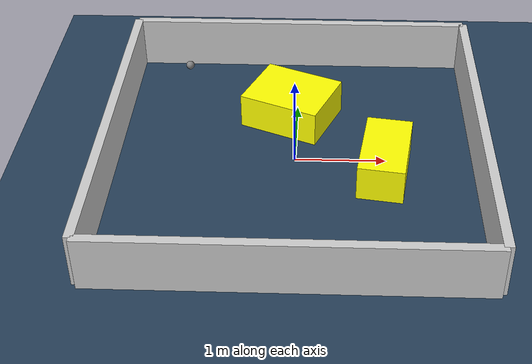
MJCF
<?xml version="1.0" ?>
<mujoco model="generated_environment">
  <option timestep="0.01" integrator="RK4" cone="elliptic"/>
  <default>
    <geom density="1"/>
  </default>
  <asset>
    <texture builtin="gradient" height="3072" rgb1="0.3 0.5 0.7" rgb2="0 0 0" type="skybox" width="512"/>
    <texture builtin="checker" height="300" mark="edge" markrgb="0.8 0.8 0.8" name="groundplane" rgb1="0.2 0.3 0.4" rgb2="0.1 0.2 0.3" type="2d" width="300"/>
    <material name="groundplane" reflectance="0.2" texrepeat="5 5" texture="groundplane" texuniform="true"/>
    <material name="robot" rgba="0.0 1.0 0.0 1"/>
  </asset>
  <worldbody>
    <light dir="0 0 -1" directional="true" pos="0 0 1.5"/>
    <geom condim="4" friction="1.0 0.005 0.001" material="groundplane" name="floor" size="0 0 0.05" type="plane"/>
    <body name="walls">
      <geom name="wall_1" condim="4" pos="-2.0 0.0 0.3" rgba="0.800000011920929 0.800000011920929 0.800000011920929 1.0" size="0.05 2.0 0.3" type="box"/>
      <geom name="wall_2" condim="4" pos="2.0 0.0 0.3" rgba="0.800000011920929 0.800000011920929 0.800000011920929 1.0" size="0.05 2.0 0.3" type="box"/>
      <geom name="wall_3" condim="4" pos="0.0 -2.0 0.3" rgba="0.800000011920929 0.800000011920929 0.800000011920929 1.0" size="2.0 0.05 0.3" type="box"/>
      <geom name="wall_4" condim="4" pos="0.0 2.0 0.3" rgba="0.800000011920929 0.800000011920929 0.800000011920929 1.0" size="2.0 0.05 0.3" type="box"/>
    </body>
    <body name="robot">
      <joint name="joint_x" type="slide" pos="0 0 0" axis="1 0 0"/>
      <joint name="joint_y" type="slide" pos="0 0 0" axis="0 1 0"/>
      <geom name="robot" type="sphere" pos="-1.3399351716980643 1.5961829293388194 0.2" size="0.05" mass="5." friction="1.0 0.005 0.0001" condim="4"/>
      <site name="sensor_ball"/>
    </body>
    <body name="obstacle_1_movable">
      <geom name="obstacle_1_movable" condim="4" pos="-0.06260793133963749 0.8049578685375782 0.2" euler="0 0 156.90006526768525" friction="1.0 0.005 0.001" rgba="1 1 0 1" size="0.46397131023662685 0.3821647264182686 0.2" type="box" mass="0.1"/>
      <joint type="free"/>
    </body>
    <body name="obstacle_2_movable">
      <geom name="obstacle_2_movable" condim="4" pos="0.9740666088601362 -0.22297549236423753 0.2" euler="0 0 81.65168111171972" friction="1.0 0.005 0.001" rgba="1 1 0 1" size="0.4638464830692737 0.24968938893013382 0.2" type="box" mass="0.1"/>
      <joint type="free"/>
    </body>
  </worldbody>
  <actuator>
    <motor name="actuator_x" joint="joint_x" gear="1" ctrlrange="-1 1"/>
    <motor name="actuator_y" joint="joint_y" gear="1" ctrlrange="-1 1"/>
  </actuator>
</mujoco>
